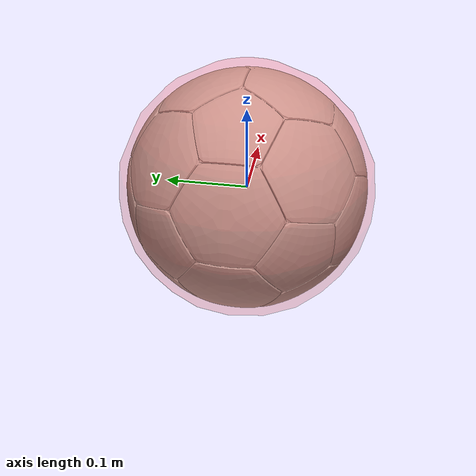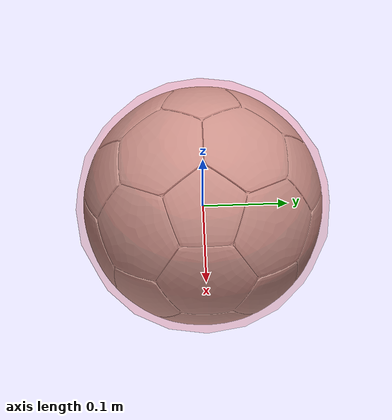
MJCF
<mujoco model="football">
  <asset>
    <mesh
      name="football_visual_mesh"
      file="assets/football/football.obj"
      scale="0.25 0.25 0.25"/>

    <texture
      name="football_tex"
      type="2d"
      file="assets/football/Image_0.png"/>

    <material
      name="football_mat"
      texture="football_tex"
      texuniform="false"
      reflectance="0.0"
      shininess="0.1"
      specular="0.1"/>
  </asset>

  <worldbody>
    <body name="football_body" pos="0 0 0">
      <freejoint/>

      <!-- Collision sphere (scaled) -->
      <geom
        name="football_collision_geom"
        type="sphere"
        size="0.15"
        density="300"
        contype="1"
        conaffinity="1"
        group="0"
        rgba="1 0 0 0.2"/>

      <!-- Visual mesh -->
      <geom
        name="football_visual_geom"
        type="mesh"
        mesh="football_visual_mesh"
        material="football_mat"
        contype="0"
        conaffinity="0"
        group="1"/>
    </body>
  </worldbody>
</mujoco>
